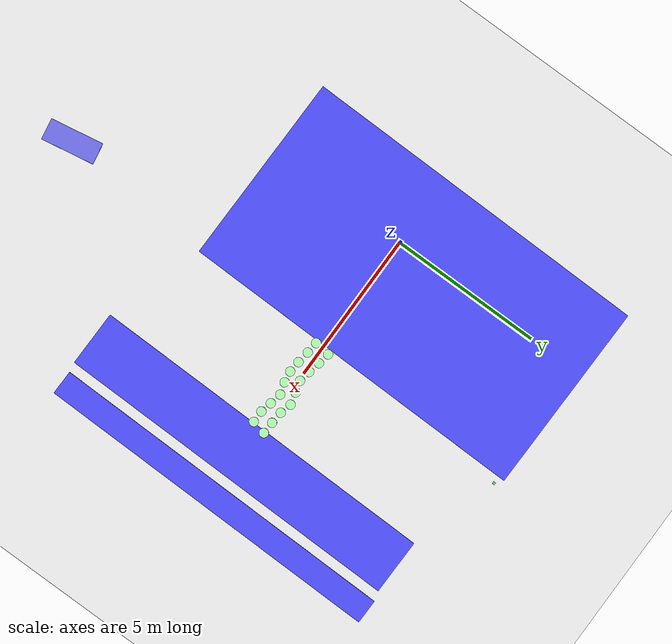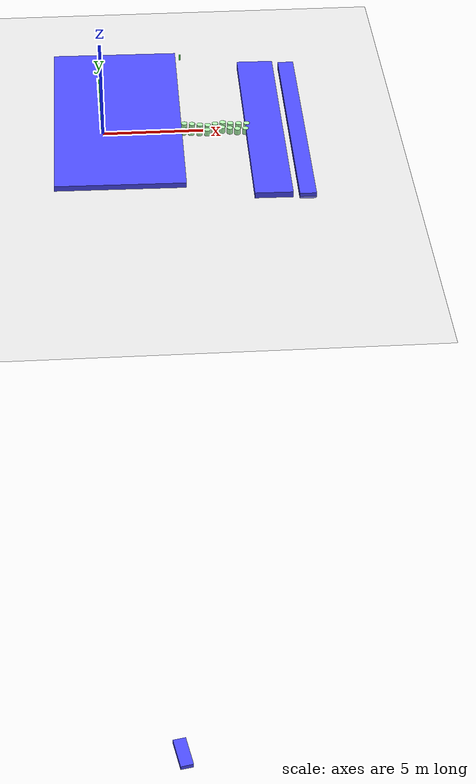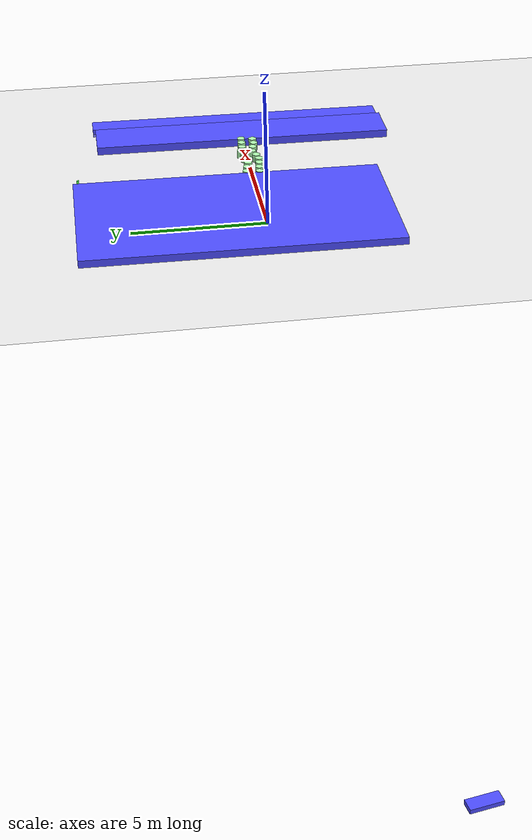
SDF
<sdf version="1.7">
 <world name="default">
  <light name="sun" type="directional">
   <pose>0 0 10 0 -0 0</pose>
   <diffuse>0.8 0.8 0.8 1</diffuse>
   <specular>0.2 0.2 0.2 1</specular>
   <attenuation>
    <range>1000</range>
    <constant>0.9</constant>
    <linear>0.01</linear>
    <quadratic>0.001</quadratic>
   </attenuation>
   <direction>-0.5 0.1 -0.9</direction>
   <spot><inner_angle>0</inner_angle><outer_angle>0</outer_angle><falloff>0</falloff></spot>
  </light>
  <model name="ground_plane">
   <static>1</static>
   <link name="link">
    <collision name="collision">
     <geometry><plane><normal>0 0 1</normal><size>100 100</size></plane></geometry>
     <surface><friction><ode><mu>100</mu><mu2>50</mu2></ode></friction></surface>
    </collision>
    <visual name="visual">
     <cast_shadows>0</cast_shadows>
     <geometry><plane><normal>0 0 1</normal><size>100 100</size></plane></geometry>
     <material>
      <script><uri>file://media/materials/scripts/gazebo.material</uri><name>Gazebo/Grey</name></script>
     </material>
    </visual>
   </link>
  </model>
  <gravity>0 0 -9.8</gravity>
  <magnetic_field>6e-06 2.3e-05 -4.2e-05</magnetic_field>
  <atmosphere type="adiabatic"/>
  <physics type="ode">
   <max_step_size>0.001</max_step_size>
   <real_time_factor>1</real_time_factor>
   <real_time_update_rate>1000</real_time_update_rate>
  </physics>
  <scene><ambient>0.4 0.4 0.4 1</ambient><background>0.7 0.7 0.7 1</background><shadows>1</shadows></scene>
  <spherical_coordinates>
   <surface_model>EARTH_WGS84</surface_model>
   <latitude_deg>0</latitude_deg>
   <longitude_deg>0</longitude_deg>
   <elevation>0</elevation>
   <heading_deg>0</heading_deg>
  </spherical_coordinates>
  <model name="ban_200_80_30_clone_clone">
   <link name="link">
    <inertial>
     <mass>1</mass>
     <inertia>
      <ixx>0.166667</ixx>
      <ixy>0</ixy>
      <ixz>0</ixz>
      <iyy>0.166667</iyy>
      <iyz>0</iyz>
      <izz>0.166667</izz>
     </inertia>
    </inertial>
    <visual name="visual">
     <geometry><box><size>2 0.8 0.3</size></box></geometry>
     <material>
      <script><name>Gazebo/Grey</name><uri>file://media/materials/scripts/gazebo.material</uri></script>
      <shader type="pixel"><normal_map>__default__</normal_map></shader>
      <ambient>0.3 0.3 1 1</ambient>
      <diffuse>0.7 0.7 0.7 1</diffuse>
      <specular>0.01 0.01 0.01 1</specular>
      <emissive>0 0 0 1</emissive>
     </material>
    </visual>
    <collision name="collision">
     <geometry><box><size>2 0.8 0.3</size></box></geometry>
     <surface>
      <friction>
       <ode><mu>1</mu><mu2>1</mu2><fdir1>0 0 0</fdir1><slip1>0</slip1><slip2>0</slip2></ode>
       <torsional>
        <coefficient>1</coefficient>
        <patch_radius>0</patch_radius>
        <surface_radius>0</surface_radius>
        <use_patch_radius>1</use_patch_radius>
        <ode><slip>0</slip></ode>
       </torsional>
      </friction>
      <bounce><restitution_coefficient>0</restitution_coefficient><threshold>1e+06</threshold></bounce>
      <contact>
       <collide_without_contact>0</collide_without_contact>
       <collide_without_contact_bitmask>1</collide_without_contact_bitmask>
       <collide_bitmask>1</collide_bitmask>
       <ode>
        <soft_cfm>0</soft_cfm>
        <soft_erp>0.2</soft_erp>
        <kp>1e+13</kp>
        <kd>1</kd>
        <max_vel>0.01</max_vel>
        <min_depth>0</min_depth>
       </ode>
       <bullet>
        <split_impulse>1</split_impulse>
        <split_impulse_penetration_threshold>-0.01</split_impulse_penetration_threshold>
        <soft_cfm>0</soft_cfm>
        <soft_erp>0.2</soft_erp>
        <kp>1e+13</kp>
        <kd>1</kd>
       </bullet>
      </contact>
     </surface>
    </collision>
   </link>
   <static>1</static>
   <pose>3.32802 -11.2985 -36.3188 0 0 -1.39548</pose>
  </model>
  <model name="ban_400_80_30_clone">
   <link name="link">
    <inertial>
     <mass>1</mass>
     <inertia>
      <ixx>0.166667</ixx>
      <ixy>0</ixy>
      <ixz>0</ixz>
      <iyy>0.166667</iyy>
      <iyz>0</iyz>
      <izz>0.166667</izz>
     </inertia>
    </inertial>
    <visual name="visual">
     <geometry><box><size>11.7457 0.8 0.3</size></box></geometry>
     <material>
      <script><name>Gazebo/Grey</name><uri>file://media/materials/scripts/gazebo.material</uri></script>
      <shader type="pixel"><normal_map>__default__</normal_map></shader>
      <ambient>0.3 0.3 1 1</ambient>
      <diffuse>0.7 0.7 0.7 1</diffuse>
      <specular>0.01 0.01 0.01 1</specular>
      <emissive>0 0 0 1</emissive>
     </material>
    </visual>
    <collision name="collision">
     <geometry><box><size>11.7457 0.8 0.3</size></box></geometry>
     <surface>
      <friction>
       <ode><mu>1</mu><mu2>1</mu2><fdir1>0 0 0</fdir1><slip1>0</slip1><slip2>0</slip2></ode>
       <torsional>
        <coefficient>1</coefficient>
        <patch_radius>0</patch_radius>
        <surface_radius>0</surface_radius>
        <use_patch_radius>1</use_patch_radius>
        <ode><slip>0</slip></ode>
       </torsional>
      </friction>
      <bounce><restitution_coefficient>0</restitution_coefficient><threshold>1e+06</threshold></bounce>
      <contact>
       <collide_without_contact>0</collide_without_contact>
       <collide_without_contact_bitmask>1</collide_without_contact_bitmask>
       <collide_bitmask>1</collide_bitmask>
       <ode>
        <soft_cfm>0</soft_cfm>
        <soft_erp>0.2</soft_erp>
        <kp>1e+13</kp>
        <kd>1</kd>
        <max_vel>0.01</max_vel>
        <min_depth>0</min_depth>
       </ode>
       <bullet>
        <split_impulse>1</split_impulse>
        <split_impulse_penetration_threshold>-0.01</split_impulse_penetration_threshold>
        <soft_cfm>0</soft_cfm>
        <soft_erp>0.2</soft_erp>
        <kp>1e+13</kp>
        <kd>1</kd>
       </bullet>
      </contact>
     </surface>
    </collision>
   </link>
   <static>1</static>
   <pose>9.68721 0.016567 0 0 -0 1.55763</pose>
  </model>
  <model name="mhz_8_30_clone">
   <link name="link">
    <inertial>
     <mass>1</mass>
     <inertia>
      <ixx>0.166667</ixx>
      <ixy>0</ixy>
      <ixz>0</ixz>
      <iyy>0.166667</iyy>
      <iyz>0</iyz>
      <izz>0.166667</izz>
     </inertia>
    </inertial>
    <visual name="visual">
     <geometry><box><size>0.08 0.08 0.3</size></box></geometry>
     <material>
      <script><name>Gazebo/Grey</name><uri>file://media/materials/scripts/gazebo.material</uri></script>
      <shader type="pixel"><normal_map>__default__</normal_map></shader>
      <ambient>0.3 1 0.3 1</ambient>
      <diffuse>0.7 0.7 0.7 1</diffuse>
      <specular>0.01 0.01 0.01 1</specular>
      <emissive>0 0 0 1</emissive>
     </material>
    </visual>
    <collision name="collision">
     <geometry><box><size>0.08 0.08 0.3</size></box></geometry>
     <surface>
      <friction>
       <ode><mu>1</mu><mu2>1</mu2><fdir1>0 0 0</fdir1><slip1>0</slip1><slip2>0</slip2></ode>
       <torsional>
        <coefficient>1</coefficient>
        <patch_radius>0</patch_radius>
        <surface_radius>0</surface_radius>
        <use_patch_radius>1</use_patch_radius>
        <ode><slip>0</slip></ode>
       </torsional>
      </friction>
      <bounce><restitution_coefficient>0</restitution_coefficient><threshold>1e+06</threshold></bounce>
      <contact>
       <collide_without_contact>0</collide_without_contact>
       <collide_without_contact_bitmask>1</collide_without_contact_bitmask>
       <collide_bitmask>1</collide_bitmask>
       <ode>
        <soft_cfm>0</soft_cfm>
        <soft_erp>0.2</soft_erp>
        <kp>1e+13</kp>
        <kd>1</kd>
        <max_vel>0.01</max_vel>
        <min_depth>0</min_depth>
       </ode>
       <bullet>
        <split_impulse>1</split_impulse>
        <split_impulse_penetration_threshold>-0.01</split_impulse_penetration_threshold>
        <soft_cfm>0</soft_cfm>
        <soft_erp>0.2</soft_erp>
        <kp>1e+13</kp>
        <kd>1</kd>
       </bullet>
      </contact>
     </surface>
    </collision>
   </link>
   <static>1</static>
   <pose>4.25594 6.71166 0.134436 0 -0 0</pose>
  </model>
  <model name="ban_400_80_30_clone_clone_clone">
   <link name="link">
    <inertial>
     <mass>1</mass>
     <inertia>
      <ixx>0.166667</ixx>
      <ixy>0</ixy>
      <ixz>0</ixz>
      <iyy>0.166667</iyy>
      <iyz>0</iyz>
      <izz>0.166667</izz>
     </inertia>
    </inertial>
    <visual name="visual">
     <geometry><box><size>11.703 1.83242 0.3</size></box></geometry>
     <material>
      <script><name>Gazebo/Grey</name><uri>file://media/materials/scripts/gazebo.material</uri></script>
      <shader type="pixel"><normal_map>__default__</normal_map></shader>
      <ambient>0.3 0.3 1 1</ambient>
      <diffuse>0.7 0.7 0.7 1</diffuse>
      <specular>0.01 0.01 0.01 1</specular>
      <emissive>0 0 0 1</emissive>
     </material>
    </visual>
    <collision name="collision">
     <geometry><box><size>11.703 1.83242 0.3</size></box></geometry>
     <surface>
      <friction>
       <ode><mu>1</mu><mu2>1</mu2><fdir1>0 0 0</fdir1><slip1>0</slip1><slip2>0</slip2></ode>
       <torsional>
        <coefficient>1</coefficient>
        <patch_radius>0</patch_radius>
        <surface_radius>0</surface_radius>
        <use_patch_radius>1</use_patch_radius>
        <ode><slip>0</slip></ode>
       </torsional>
      </friction>
      <bounce><restitution_coefficient>0</restitution_coefficient><threshold>1e+06</threshold></bounce>
      <contact>
       <collide_without_contact>0</collide_without_contact>
       <collide_without_contact_bitmask>1</collide_without_contact_bitmask>
       <collide_bitmask>1</collide_bitmask>
       <ode>
        <soft_cfm>0</soft_cfm>
        <soft_erp>0.2</soft_erp>
        <kp>1e+13</kp>
        <kd>1</kd>
        <max_vel>0.01</max_vel>
        <min_depth>0</min_depth>
       </ode>
       <bullet>
        <split_impulse>1</split_impulse>
        <split_impulse_penetration_threshold>-0.01</split_impulse_penetration_threshold>
        <soft_cfm>0</soft_cfm>
        <soft_erp>0.2</soft_erp>
        <kp>1e+13</kp>
        <kd>1</kd>
       </bullet>
      </contact>
     </surface>
    </collision>
   </link>
   <static>1</static>
   <pose>8.04186 -0.043434 0.139007 0 -0 1.55763</pose>
  </model>
  <model name="ban_400_80_30_clone_clone_0_clone_clone">
   <link name="link">
    <inertial>
     <mass>1</mass>
     <inertia>
      <ixx>0.166667</ixx>
      <ixy>0</ixy>
      <ixz>0</ixz>
      <iyy>0.166667</iyy>
      <iyz>0</iyz>
      <izz>0.166667</izz>
     </inertia>
    </inertial>
    <visual name="visual">
     <geometry><box><size>11.7457 6.34681 0.274752</size></box></geometry>
     <material>
      <script><name>Gazebo/Grey</name><uri>file://media/materials/scripts/gazebo.material</uri></script>
      <shader type="pixel"><normal_map>__default__</normal_map></shader>
      <ambient>0.3 0.3 1 1</ambient>
      <diffuse>0.7 0.7 0.7 1</diffuse>
      <specular>0.01 0.01 0.01 1</specular>
      <emissive>0 0 0 1</emissive>
     </material>
    </visual>
    <collision name="collision">
     <geometry><box><size>11.7457 6.34681 0.274752</size></box></geometry>
     <surface>
      <friction>
       <ode><mu>1</mu><mu2>1</mu2><fdir1>0 0 0</fdir1><slip1>0</slip1><slip2>0</slip2></ode>
       <torsional>
        <coefficient>1</coefficient>
        <patch_radius>0</patch_radius>
        <surface_radius>0</surface_radius>
        <use_patch_radius>1</use_patch_radius>
        <ode><slip>0</slip></ode>
       </torsional>
      </friction>
      <bounce><restitution_coefficient>0</restitution_coefficient><threshold>1e+06</threshold></bounce>
      <contact>
       <collide_without_contact>0</collide_without_contact>
       <collide_without_contact_bitmask>1</collide_without_contact_bitmask>
       <collide_bitmask>1</collide_bitmask>
       <ode>
        <soft_cfm>0</soft_cfm>
        <soft_erp>0.2</soft_erp>
        <kp>1e+13</kp>
        <kd>1</kd>
        <max_vel>0.01</max_vel>
        <min_depth>0</min_depth>
       </ode>
       <bullet>
        <split_impulse>1</split_impulse>
        <split_impulse_penetration_threshold>-0.01</split_impulse_penetration_threshold>
        <soft_cfm>0</soft_cfm>
        <soft_erp>0.2</soft_erp>
        <kp>1e+13</kp>
        <kd>1</kd>
       </bullet>
      </contact>
     </surface>
    </collision>
   </link>
   <static>1</static>
   <pose>0.760648 1.08367 0.138376 0 -0 1.55763</pose>
  </model>
  <model name="mhz_y_25_30_clone_13_clone_clone_9_clone_0_clone_clone">
   <link name="link">
    <inertial>
     <mass>1</mass>
     <inertia><ixx>0.145833</ixx><ixy>0</ixy><ixz>0</ixz><iyy>0.145833</iyy><iyz>0</iyz><izz>0.125</izz></inertia>
    </inertial>
    <visual name="visual">
     <geometry><cylinder><radius>0.15149</radius><length>0.3</length></cylinder></geometry>
     <material>
      <script><name>Gazebo/Grey</name><uri>file://media/materials/scripts/gazebo.material</uri></script>
      <shader type="pixel"><normal_map>__default__</normal_map></shader>
      <ambient>0 1 0 0</ambient>
      <diffuse>0.7 1 0.7 1</diffuse>
      <specular>0.01 0.01 0.01 1</specular>
      <emissive>0 0 0 1</emissive>
     </material>
    </visual>
    <collision name="collision">
     <geometry><cylinder><radius>0.15149</radius><length>0.3</length></cylinder></geometry>
     <surface>
      <friction>
       <ode><mu>1</mu><mu2>1</mu2><fdir1>0 0 0</fdir1><slip1>0</slip1><slip2>0</slip2></ode>
       <torsional>
        <coefficient>1</coefficient>
        <patch_radius>0</patch_radius>
        <surface_radius>0</surface_radius>
        <use_patch_radius>1</use_patch_radius>
        <ode><slip>0</slip></ode>
       </torsional>
      </friction>
      <bounce><restitution_coefficient>0</restitution_coefficient><threshold>1e+06</threshold></bounce>
      <contact>
       <collide_without_contact>0</collide_without_contact>
       <collide_without_contact_bitmask>1</collide_without_contact_bitmask>
       <collide_bitmask>1</collide_bitmask>
       <ode>
        <soft_cfm>0</soft_cfm>
        <soft_erp>0.2</soft_erp>
        <kp>1e+13</kp>
        <kd>1</kd>
        <max_vel>0.01</max_vel>
        <min_depth>0</min_depth>
       </ode>
       <bullet>
        <split_impulse>1</split_impulse>
        <split_impulse_penetration_threshold>-0.01</split_impulse_penetration_threshold>
        <soft_cfm>0</soft_cfm>
        <soft_erp>0.2</soft_erp>
        <kp>1e+13</kp>
        <kd>1</kd>
       </bullet>
      </contact>
     </surface>
    </collision>
   </link>
   <static>1</static>
   <pose>4.06973 0.24708 0.14679 0 -0 0</pose>
  </model>
  <model name="mhz_y_25_30_clone_13_clone_clone_9_clone_0_clone_clone_0_clone_clone">
   <link name="link">
    <inertial>
     <mass>1</mass>
     <inertia><ixx>0.145833</ixx><ixy>0</ixy><ixz>0</ixz><iyy>0.145833</iyy><iyz>0</iyz><izz>0.125</izz></inertia>
    </inertial>
    <visual name="visual">
     <geometry><cylinder><radius>0.156911</radius><length>0.3</length></cylinder></geometry>
     <material>
      <script><name>Gazebo/Grey</name><uri>file://media/materials/scripts/gazebo.material</uri></script>
      <shader type="pixel"><normal_map>__default__</normal_map></shader>
      <ambient>0 1 0 0</ambient>
      <diffuse>0.7 1 0.7 1</diffuse>
      <specular>0.01 0.01 0.01 1</specular>
      <emissive>0 0 0 1</emissive>
     </material>
    </visual>
    <collision name="collision">
     <geometry><cylinder><radius>0.156911</radius><length>0.3</length></cylinder></geometry>
     <surface>
      <friction>
       <ode><mu>1</mu><mu2>1</mu2><fdir1>0 0 0</fdir1><slip1>0</slip1><slip2>0</slip2></ode>
       <torsional>
        <coefficient>1</coefficient>
        <patch_radius>0</patch_radius>
        <surface_radius>0</surface_radius>
        <use_patch_radius>1</use_patch_radius>
        <ode><slip>0</slip></ode>
       </torsional>
      </friction>
      <bounce><restitution_coefficient>0</restitution_coefficient><threshold>1e+06</threshold></bounce>
      <contact>
       <collide_without_contact>0</collide_without_contact>
       <collide_without_contact_bitmask>1</collide_without_contact_bitmask>
       <collide_bitmask>1</collide_bitmask>
       <ode>
        <soft_cfm>0</soft_cfm>
        <soft_erp>0.2</soft_erp>
        <kp>1e+13</kp>
        <kd>1</kd>
        <max_vel>0.01</max_vel>
        <min_depth>0</min_depth>
       </ode>
       <bullet>
        <split_impulse>1</split_impulse>
        <split_impulse_penetration_threshold>-0.01</split_impulse_penetration_threshold>
        <soft_cfm>0</soft_cfm>
        <soft_erp>0.2</soft_erp>
        <kp>1e+13</kp>
        <kd>1</kd>
       </bullet>
      </contact>
     </surface>
    </collision>
   </link>
   <static>1</static>
   <pose>4.8464 0.093522 0.14679 0 -0 0</pose>
  </model>
  <model name="mhz_y_25_30_clone_13_clone_clone_9_clone_0_clone_clone_clone">
   <link name="link">
    <inertial>
     <mass>1</mass>
     <inertia><ixx>0.145833</ixx><ixy>0</ixy><ixz>0</ixz><iyy>0.145833</iyy><iyz>0</iyz><izz>0.125</izz></inertia>
    </inertial>
    <visual name="visual">
     <geometry><cylinder><radius>0.15149</radius><length>0.3</length></cylinder></geometry>
     <material>
      <script><name>Gazebo/Grey</name><uri>file://media/materials/scripts/gazebo.material</uri></script>
      <shader type="pixel"><normal_map>__default__</normal_map></shader>
      <ambient>0 1 0 0</ambient>
      <diffuse>0.7 1 0.7 1</diffuse>
      <specular>0.01 0.01 0.01 1</specular>
      <emissive>0 0 0 1</emissive>
     </material>
    </visual>
    <collision name="collision">
     <geometry><cylinder><radius>0.15149</radius><length>0.3</length></cylinder></geometry>
     <surface>
      <friction>
       <ode><mu>1</mu><mu2>1</mu2><fdir1>0 0 0</fdir1><slip1>0</slip1><slip2>0</slip2></ode>
       <torsional>
        <coefficient>1</coefficient>
        <patch_radius>0</patch_radius>
        <surface_radius>0</surface_radius>
        <use_patch_radius>1</use_patch_radius>
        <ode><slip>0</slip></ode>
       </torsional>
      </friction>
      <bounce><restitution_coefficient>0</restitution_coefficient><threshold>1e+06</threshold></bounce>
      <contact>
       <collide_without_contact>0</collide_without_contact>
       <collide_without_contact_bitmask>1</collide_without_contact_bitmask>
       <collide_bitmask>1</collide_bitmask>
       <ode>
        <soft_cfm>0</soft_cfm>
        <soft_erp>0.2</soft_erp>
        <kp>1e+13</kp>
        <kd>1</kd>
        <max_vel>0.01</max_vel>
        <min_depth>0</min_depth>
       </ode>
       <bullet>
        <split_impulse>1</split_impulse>
        <split_impulse_penetration_threshold>-0.01</split_impulse_penetration_threshold>
        <soft_cfm>0</soft_cfm>
        <soft_erp>0.2</soft_erp>
        <kp>1e+13</kp>
        <kd>1</kd>
       </bullet>
      </contact>
     </surface>
    </collision>
   </link>
   <static>1</static>
   <pose>4.00474 -0.254017 0.14679 0 -0 0</pose>
  </model>
  <model name="mhz_y_25_30_clone_13_clone_clone_9_clone_0_clone_clone_clone_clone">
   <link name="link">
    <inertial>
     <mass>1</mass>
     <inertia><ixx>0.145833</ixx><ixy>0</ixy><ixz>0</ixz><iyy>0.145833</iyy><iyz>0</iyz><izz>0.125</izz></inertia>
    </inertial>
    <visual name="visual">
     <geometry><cylinder><radius>0.15149</radius><length>0.3</length></cylinder></geometry>
     <material>
      <script><name>Gazebo/Grey</name><uri>file://media/materials/scripts/gazebo.material</uri></script>
      <shader type="pixel"><normal_map>__default__</normal_map></shader>
      <ambient>0 1 0 0</ambient>
      <diffuse>0.7 1 0.7 1</diffuse>
      <specular>0.01 0.01 0.01 1</specular>
      <emissive>0 0 0 1</emissive>
     </material>
    </visual>
    <collision name="collision">
     <geometry><cylinder><radius>0.15149</radius><length>0.3</length></cylinder></geometry>
     <surface>
      <friction>
       <ode><mu>1</mu><mu2>1</mu2><fdir1>0 0 0</fdir1><slip1>0</slip1><slip2>0</slip2></ode>
       <torsional>
        <coefficient>1</coefficient>
        <patch_radius>0</patch_radius>
        <surface_radius>0</surface_radius>
        <use_patch_radius>1</use_patch_radius>
        <ode><slip>0</slip></ode>
       </torsional>
      </friction>
      <bounce><restitution_coefficient>0</restitution_coefficient><threshold>1e+06</threshold></bounce>
      <contact>
       <collide_without_contact>0</collide_without_contact>
       <collide_without_contact_bitmask>1</collide_without_contact_bitmask>
       <collide_bitmask>1</collide_bitmask>
       <ode>
        <soft_cfm>0</soft_cfm>
        <soft_erp>0.2</soft_erp>
        <kp>1e+13</kp>
        <kd>1</kd>
        <max_vel>0.01</max_vel>
        <min_depth>0</min_depth>
       </ode>
       <bullet>
        <split_impulse>1</split_impulse>
        <split_impulse_penetration_threshold>-0.01</split_impulse_penetration_threshold>
        <soft_cfm>0</soft_cfm>
        <soft_erp>0.2</soft_erp>
        <kp>1e+13</kp>
        <kd>1</kd>
       </bullet>
      </contact>
     </surface>
    </collision>
   </link>
   <static>1</static>
   <pose>4.45485 0.181742 0.14679 0 -0 0</pose>
  </model>
  <model name="mhz_y_25_30_clone_13_clone_clone_9_clone_0_clone_clone_clone_0">
   <link name="link">
    <inertial>
     <mass>1</mass>
     <inertia><ixx>0.145833</ixx><ixy>0</ixy><ixz>0</ixz><iyy>0.145833</iyy><iyz>0</iyz><izz>0.125</izz></inertia>
    </inertial>
    <visual name="visual">
     <geometry><cylinder><radius>0.15149</radius><length>0.3</length></cylinder></geometry>
     <material>
      <script><name>Gazebo/Grey</name><uri>file://media/materials/scripts/gazebo.material</uri></script>
      <shader type="pixel"><normal_map>__default__</normal_map></shader>
      <ambient>0 1 0 0</ambient>
      <diffuse>0.7 1 0.7 1</diffuse>
      <specular>0.01 0.01 0.01 1</specular>
      <emissive>0 0 0 1</emissive>
     </material>
    </visual>
    <collision name="collision">
     <geometry><cylinder><radius>0.15149</radius><length>0.3</length></cylinder></geometry>
     <surface>
      <friction>
       <ode><mu>1</mu><mu2>1</mu2><fdir1>0 0 0</fdir1><slip1>0</slip1><slip2>0</slip2></ode>
       <torsional>
        <coefficient>1</coefficient>
        <patch_radius>0</patch_radius>
        <surface_radius>0</surface_radius>
        <use_patch_radius>1</use_patch_radius>
        <ode><slip>0</slip></ode>
       </torsional>
      </friction>
      <bounce><restitution_coefficient>0</restitution_coefficient><threshold>1e+06</threshold></bounce>
      <contact>
       <collide_without_contact>0</collide_without_contact>
       <collide_without_contact_bitmask>1</collide_without_contact_bitmask>
       <collide_bitmask>1</collide_bitmask>
       <ode>
        <soft_cfm>0</soft_cfm>
        <soft_erp>0.2</soft_erp>
        <kp>1e+13</kp>
        <kd>1</kd>
        <max_vel>0.01</max_vel>
        <min_depth>0</min_depth>
       </ode>
       <bullet>
        <split_impulse>1</split_impulse>
        <split_impulse_penetration_threshold>-0.01</split_impulse_penetration_threshold>
        <soft_cfm>0</soft_cfm>
        <soft_erp>0.2</soft_erp>
        <kp>1e+13</kp>
        <kd>1</kd>
       </bullet>
      </contact>
     </surface>
    </collision>
   </link>
   <static>1</static>
   <pose>4.39252 -0.291583 0.14679 0 -0 0</pose>
  </model>
  <model name="mhz_y_25_30_clone_13_clone_clone_9_clone_0_clone_clone_clone_1">
   <link name="link">
    <inertial>
     <mass>1</mass>
     <inertia><ixx>0.145833</ixx><ixy>0</ixy><ixz>0</ixz><iyy>0.145833</iyy><iyz>0</iyz><izz>0.125</izz></inertia>
    </inertial>
    <visual name="visual">
     <geometry><cylinder><radius>0.15149</radius><length>0.3</length></cylinder></geometry>
     <material>
      <script><name>Gazebo/Grey</name><uri>file://media/materials/scripts/gazebo.material</uri></script>
      <shader type="pixel"><normal_map>__default__</normal_map></shader>
      <ambient>0 1 0 0</ambient>
      <diffuse>0.7 1 0.7 1</diffuse>
      <specular>0.01 0.01 0.01 1</specular>
      <emissive>0 0 0 1</emissive>
     </material>
    </visual>
    <collision name="collision">
     <geometry><cylinder><radius>0.15149</radius><length>0.3</length></cylinder></geometry>
     <surface>
      <friction>
       <ode><mu>1</mu><mu2>1</mu2><fdir1>0 0 0</fdir1><slip1>0</slip1><slip2>0</slip2></ode>
       <torsional>
        <coefficient>1</coefficient>
        <patch_radius>0</patch_radius>
        <surface_radius>0</surface_radius>
        <use_patch_radius>1</use_patch_radius>
        <ode><slip>0</slip></ode>
       </torsional>
      </friction>
      <bounce><restitution_coefficient>0</restitution_coefficient><threshold>1e+06</threshold></bounce>
      <contact>
       <collide_without_contact>0</collide_without_contact>
       <collide_without_contact_bitmask>1</collide_without_contact_bitmask>
       <collide_bitmask>1</collide_bitmask>
       <ode>
        <soft_cfm>0</soft_cfm>
        <soft_erp>0.2</soft_erp>
        <kp>1e+13</kp>
        <kd>1</kd>
        <max_vel>0.01</max_vel>
        <min_depth>0</min_depth>
       </ode>
       <bullet>
        <split_impulse>1</split_impulse>
        <split_impulse_penetration_threshold>-0.01</split_impulse_penetration_threshold>
        <soft_cfm>0</soft_cfm>
        <soft_erp>0.2</soft_erp>
        <kp>1e+13</kp>
        <kd>1</kd>
       </bullet>
      </contact>
     </surface>
    </collision>
   </link>
   <static>1</static>
   <pose>4.79937 -0.34612 0.14679 0 -0 0</pose>
  </model>
  <model name="mhz_y_25_30_clone_13_clone_clone_9_clone_0_clone_clone_clone_2">
   <link name="link">
    <inertial>
     <mass>1</mass>
     <inertia><ixx>0.145833</ixx><ixy>0</ixy><ixz>0</ixz><iyy>0.145833</iyy><iyz>0</iyz><izz>0.125</izz></inertia>
    </inertial>
    <visual name="visual">
     <geometry><cylinder><radius>0.15149</radius><length>0.3</length></cylinder></geometry>
     <material>
      <script><name>Gazebo/Grey</name><uri>file://media/materials/scripts/gazebo.material</uri></script>
      <shader type="pixel"><normal_map>__default__</normal_map></shader>
      <ambient>0 1 0 0</ambient>
      <diffuse>0.7 1 0.7 1</diffuse>
      <specular>0.01 0.01 0.01 1</specular>
      <emissive>0 0 0 1</emissive>
     </material>
    </visual>
    <collision name="collision">
     <geometry><cylinder><radius>0.15149</radius><length>0.3</length></cylinder></geometry>
     <surface>
      <friction>
       <ode><mu>1</mu><mu2>1</mu2><fdir1>0 0 0</fdir1><slip1>0</slip1><slip2>0</slip2></ode>
       <torsional>
        <coefficient>1</coefficient>
        <patch_radius>0</patch_radius>
        <surface_radius>0</surface_radius>
        <use_patch_radius>1</use_patch_radius>
        <ode><slip>0</slip></ode>
       </torsional>
      </friction>
      <bounce><restitution_coefficient>0</restitution_coefficient><threshold>1e+06</threshold></bounce>
      <contact>
       <collide_without_contact>0</collide_without_contact>
       <collide_without_contact_bitmask>1</collide_without_contact_bitmask>
       <collide_bitmask>1</collide_bitmask>
       <ode>
        <soft_cfm>0</soft_cfm>
        <soft_erp>0.2</soft_erp>
        <kp>1e+13</kp>
        <kd>1</kd>
        <max_vel>0.01</max_vel>
        <min_depth>0</min_depth>
       </ode>
       <bullet>
        <split_impulse>1</split_impulse>
        <split_impulse_penetration_threshold>-0.01</split_impulse_penetration_threshold>
        <soft_cfm>0</soft_cfm>
        <soft_erp>0.2</soft_erp>
        <kp>1e+13</kp>
        <kd>1</kd>
       </bullet>
      </contact>
     </surface>
    </collision>
   </link>
   <static>1</static>
   <pose>5.1826 -0.381923 0.14679 0 -0 0</pose>
  </model>
  <model name="mhz_y_25_30_clone_13_clone_clone_9_clone_0_clone_clone_clone_2_clone">
   <link name="link">
    <inertial>
     <mass>1</mass>
     <inertia><ixx>0.145833</ixx><ixy>0</ixy><ixz>0</ixz><iyy>0.145833</iyy><iyz>0</iyz><izz>0.125</izz></inertia>
    </inertial>
    <visual name="visual">
     <geometry><cylinder><radius>0.15149</radius><length>0.3</length></cylinder></geometry>
     <material>
      <script><name>Gazebo/Grey</name><uri>file://media/materials/scripts/gazebo.material</uri></script>
      <shader type="pixel"><normal_map>__default__</normal_map></shader>
      <ambient>0 1 0 0</ambient>
      <diffuse>0.7 1 0.7 1</diffuse>
      <specular>0.01 0.01 0.01 1</specular>
      <emissive>0 0 0 1</emissive>
     </material>
    </visual>
    <collision name="collision">
     <geometry><cylinder><radius>0.15149</radius><length>0.3</length></cylinder></geometry>
     <surface>
      <friction>
       <ode><mu>1</mu><mu2>1</mu2><fdir1>0 0 0</fdir1><slip1>0</slip1><slip2>0</slip2></ode>
       <torsional>
        <coefficient>1</coefficient>
        <patch_radius>0</patch_radius>
        <surface_radius>0</surface_radius>
        <use_patch_radius>1</use_patch_radius>
        <ode><slip>0</slip></ode>
       </torsional>
      </friction>
      <bounce><restitution_coefficient>0</restitution_coefficient><threshold>1e+06</threshold></bounce>
      <contact>
       <collide_without_contact>0</collide_without_contact>
       <collide_without_contact_bitmask>1</collide_without_contact_bitmask>
       <collide_bitmask>1</collide_bitmask>
       <ode>
        <soft_cfm>0</soft_cfm>
        <soft_erp>0.2</soft_erp>
        <kp>1e+13</kp>
        <kd>1</kd>
        <max_vel>0.01</max_vel>
        <min_depth>0</min_depth>
       </ode>
       <bullet>
        <split_impulse>1</split_impulse>
        <split_impulse_penetration_threshold>-0.01</split_impulse_penetration_threshold>
        <soft_cfm>0</soft_cfm>
        <soft_erp>0.2</soft_erp>
        <kp>1e+13</kp>
        <kd>1</kd>
       </bullet>
      </contact>
     </surface>
    </collision>
   </link>
   <static>1</static>
   <pose>5.23444 0.033162 0.14679 0 -0 0</pose>
  </model>
  <model name="mhz_y_25_30_clone_13_clone_clone_9_clone_0_clone_clone_clone_2_clone_0">
   <link name="link">
    <inertial>
     <mass>1</mass>
     <inertia><ixx>0.145833</ixx><ixy>0</ixy><ixz>0</ixz><iyy>0.145833</iyy><iyz>0</iyz><izz>0.125</izz></inertia>
    </inertial>
    <visual name="visual">
     <geometry><cylinder><radius>0.15149</radius><length>0.3</length></cylinder></geometry>
     <material>
      <script><name>Gazebo/Grey</name><uri>file://media/materials/scripts/gazebo.material</uri></script>
      <shader type="pixel"><normal_map>__default__</normal_map></shader>
      <ambient>0 1 0 0</ambient>
      <diffuse>0.7 1 0.7 1</diffuse>
      <specular>0.01 0.01 0.01 1</specular>
      <emissive>0 0 0 1</emissive>
     </material>
    </visual>
    <collision name="collision">
     <geometry><cylinder><radius>0.15149</radius><length>0.3</length></cylinder></geometry>
     <surface>
      <friction>
       <ode><mu>1</mu><mu2>1</mu2><fdir1>0 0 0</fdir1><slip1>0</slip1><slip2>0</slip2></ode>
       <torsional>
        <coefficient>1</coefficient>
        <patch_radius>0</patch_radius>
        <surface_radius>0</surface_radius>
        <use_patch_radius>1</use_patch_radius>
        <ode><slip>0</slip></ode>
       </torsional>
      </friction>
      <bounce><restitution_coefficient>0</restitution_coefficient><threshold>1e+06</threshold></bounce>
      <contact>
       <collide_without_contact>0</collide_without_contact>
       <collide_without_contact_bitmask>1</collide_without_contact_bitmask>
       <collide_bitmask>1</collide_bitmask>
       <ode>
        <soft_cfm>0</soft_cfm>
        <soft_erp>0.2</soft_erp>
        <kp>1e+13</kp>
        <kd>1</kd>
        <max_vel>0.01</max_vel>
        <min_depth>0</min_depth>
       </ode>
       <bullet>
        <split_impulse>1</split_impulse>
        <split_impulse_penetration_threshold>-0.01</split_impulse_penetration_threshold>
        <soft_cfm>0</soft_cfm>
        <soft_erp>0.2</soft_erp>
        <kp>1e+13</kp>
        <kd>1</kd>
       </bullet>
      </contact>
     </surface>
    </collision>
   </link>
   <static>1</static>
   <pose>5.55189 -0.323477 0.14679 0 -0 0</pose>
  </model>
  <model name="mhz_y_25_30_clone_13_clone_clone_9_clone_0_clone_clone_clone_2_clone_1">
   <link name="link">
    <inertial>
     <mass>1</mass>
     <inertia><ixx>0.145833</ixx><ixy>0</ixy><ixz>0</ixz><iyy>0.145833</iyy><iyz>0</iyz><izz>0.125</izz></inertia>
    </inertial>
    <visual name="visual">
     <geometry><cylinder><radius>0.15149</radius><length>0.3</length></cylinder></geometry>
     <material>
      <script><name>Gazebo/Grey</name><uri>file://media/materials/scripts/gazebo.material</uri></script>
      <shader type="pixel"><normal_map>__default__</normal_map></shader>
      <ambient>0 1 0 0</ambient>
      <diffuse>0.7 1 0.7 1</diffuse>
      <specular>0.01 0.01 0.01 1</specular>
      <emissive>0 0 0 1</emissive>
     </material>
    </visual>
    <collision name="collision">
     <geometry><cylinder><radius>0.15149</radius><length>0.3</length></cylinder></geometry>
     <surface>
      <friction>
       <ode><mu>1</mu><mu2>1</mu2><fdir1>0 0 0</fdir1><slip1>0</slip1><slip2>0</slip2></ode>
       <torsional>
        <coefficient>1</coefficient>
        <patch_radius>0</patch_radius>
        <surface_radius>0</surface_radius>
        <use_patch_radius>1</use_patch_radius>
        <ode><slip>0</slip></ode>
       </torsional>
      </friction>
      <bounce><restitution_coefficient>0</restitution_coefficient><threshold>1e+06</threshold></bounce>
      <contact>
       <collide_without_contact>0</collide_without_contact>
       <collide_without_contact_bitmask>1</collide_without_contact_bitmask>
       <collide_bitmask>1</collide_bitmask>
       <ode>
        <soft_cfm>0</soft_cfm>
        <soft_erp>0.2</soft_erp>
        <kp>1e+13</kp>
        <kd>1</kd>
        <max_vel>0.01</max_vel>
        <min_depth>0</min_depth>
       </ode>
       <bullet>
        <split_impulse>1</split_impulse>
        <split_impulse_penetration_threshold>-0.01</split_impulse_penetration_threshold>
        <soft_cfm>0</soft_cfm>
        <soft_erp>0.2</soft_erp>
        <kp>1e+13</kp>
        <kd>1</kd>
       </bullet>
      </contact>
     </surface>
    </collision>
   </link>
   <static>1</static>
   <pose>5.60478 0.137195 0.14679 0 -0 0</pose>
  </model>
  <model name="mhz_y_25_30_clone_13_clone_clone_9_clone_0_clone_clone_clone_2_clone_0_clone">
   <link name="link">
    <inertial>
     <mass>1</mass>
     <inertia><ixx>0.145833</ixx><ixy>0</ixy><ixz>0</ixz><iyy>0.145833</iyy><iyz>0</iyz><izz>0.125</izz></inertia>
    </inertial>
    <visual name="visual">
     <geometry><cylinder><radius>0.15149</radius><length>0.3</length></cylinder></geometry>
     <material>
      <script><name>Gazebo/Grey</name><uri>file://media/materials/scripts/gazebo.material</uri></script>
      <shader type="pixel"><normal_map>__default__</normal_map></shader>
      <ambient>0 1 0 0</ambient>
      <diffuse>0.7 1 0.7 1</diffuse>
      <specular>0.01 0.01 0.01 1</specular>
      <emissive>0 0 0 1</emissive>
     </material>
    </visual>
    <collision name="collision">
     <geometry><cylinder><radius>0.15149</radius><length>0.3</length></cylinder></geometry>
     <surface>
      <friction>
       <ode><mu>1</mu><mu2>1</mu2><fdir1>0 0 0</fdir1><slip1>0</slip1><slip2>0</slip2></ode>
       <torsional>
        <coefficient>1</coefficient>
        <patch_radius>0</patch_radius>
        <surface_radius>0</surface_radius>
        <use_patch_radius>1</use_patch_radius>
        <ode><slip>0</slip></ode>
       </torsional>
      </friction>
      <bounce><restitution_coefficient>0</restitution_coefficient><threshold>1e+06</threshold></bounce>
      <contact>
       <collide_without_contact>0</collide_without_contact>
       <collide_without_contact_bitmask>1</collide_without_contact_bitmask>
       <collide_bitmask>1</collide_bitmask>
       <ode>
        <soft_cfm>0</soft_cfm>
        <soft_erp>0.2</soft_erp>
        <kp>1e+13</kp>
        <kd>1</kd>
        <max_vel>0.01</max_vel>
        <min_depth>0</min_depth>
       </ode>
       <bullet>
        <split_impulse>1</split_impulse>
        <split_impulse_penetration_threshold>-0.01</split_impulse_penetration_threshold>
        <soft_cfm>0</soft_cfm>
        <soft_erp>0.2</soft_erp>
        <kp>1e+13</kp>
        <kd>1</kd>
       </bullet>
      </contact>
     </surface>
    </collision>
   </link>
   <static>1</static>
   <pose>5.93652 -0.209893 0.14679 0 -0 0</pose>
  </model>
  <model name="mhz_y_25_30_clone_13_clone_clone_9_clone_0_clone_clone_clone_2_clone_0_clone_clone">
   <link name="link">
    <inertial>
     <mass>1</mass>
     <inertia><ixx>0.145833</ixx><ixy>0</ixy><ixz>0</ixz><iyy>0.145833</iyy><iyz>0</iyz><izz>0.125</izz></inertia>
    </inertial>
    <visual name="visual">
     <geometry><cylinder><radius>0.15149</radius><length>0.3</length></cylinder></geometry>
     <material>
      <script><name>Gazebo/Grey</name><uri>file://media/materials/scripts/gazebo.material</uri></script>
      <shader type="pixel"><normal_map>__default__</normal_map></shader>
      <ambient>0 1 0 0</ambient>
      <diffuse>0.7 1 0.7 1</diffuse>
      <specular>0.01 0.01 0.01 1</specular>
      <emissive>0 0 0 1</emissive>
     </material>
    </visual>
    <collision name="collision">
     <geometry><cylinder><radius>0.15149</radius><length>0.3</length></cylinder></geometry>
     <surface>
      <friction>
       <ode><mu>1</mu><mu2>1</mu2><fdir1>0 0 0</fdir1><slip1>0</slip1><slip2>0</slip2></ode>
       <torsional>
        <coefficient>1</coefficient>
        <patch_radius>0</patch_radius>
        <surface_radius>0</surface_radius>
        <use_patch_radius>1</use_patch_radius>
        <ode><slip>0</slip></ode>
       </torsional>
      </friction>
      <bounce><restitution_coefficient>0</restitution_coefficient><threshold>1e+06</threshold></bounce>
      <contact>
       <collide_without_contact>0</collide_without_contact>
       <collide_without_contact_bitmask>1</collide_without_contact_bitmask>
       <collide_bitmask>1</collide_bitmask>
       <ode>
        <soft_cfm>0</soft_cfm>
        <soft_erp>0.2</soft_erp>
        <kp>1e+13</kp>
        <kd>1</kd>
        <max_vel>0.01</max_vel>
        <min_depth>0</min_depth>
       </ode>
       <bullet>
        <split_impulse>1</split_impulse>
        <split_impulse_penetration_threshold>-0.01</split_impulse_penetration_threshold>
        <soft_cfm>0</soft_cfm>
        <soft_erp>0.2</soft_erp>
        <kp>1e+13</kp>
        <kd>1</kd>
       </bullet>
      </contact>
     </surface>
    </collision>
   </link>
   <static>1</static>
   <pose>5.99944 0.229475 0.14679 0 -0 0</pose>
  </model>
  <model name="mhz_y_25_30_clone_13_clone_clone_9_clone_0_clone_clone_clone_2_clone_0_clone_clone_clone">
   <link name="link">
    <inertial>
     <mass>1</mass>
     <inertia><ixx>0.145833</ixx><ixy>0</ixy><ixz>0</ixz><iyy>0.145833</iyy><iyz>0</iyz><izz>0.125</izz></inertia>
    </inertial>
    <visual name="visual">
     <geometry><cylinder><radius>0.15149</radius><length>0.3</length></cylinder></geometry>
     <material>
      <script><name>Gazebo/Grey</name><uri>file://media/materials/scripts/gazebo.material</uri></script>
      <shader type="pixel"><normal_map>__default__</normal_map></shader>
      <ambient>0 1 0 0</ambient>
      <diffuse>0.7 1 0.7 1</diffuse>
      <specular>0.01 0.01 0.01 1</specular>
      <emissive>0 0 0 1</emissive>
     </material>
    </visual>
    <collision name="collision">
     <geometry><cylinder><radius>0.15149</radius><length>0.3</length></cylinder></geometry>
     <surface>
      <friction>
       <ode><mu>1</mu><mu2>1</mu2><fdir1>0 0 0</fdir1><slip1>0</slip1><slip2>0</slip2></ode>
       <torsional>
        <coefficient>1</coefficient>
        <patch_radius>0</patch_radius>
        <surface_radius>0</surface_radius>
        <use_patch_radius>1</use_patch_radius>
        <ode><slip>0</slip></ode>
       </torsional>
      </friction>
      <bounce><restitution_coefficient>0</restitution_coefficient><threshold>1e+06</threshold></bounce>
      <contact>
       <collide_without_contact>0</collide_without_contact>
       <collide_without_contact_bitmask>1</collide_without_contact_bitmask>
       <collide_bitmask>1</collide_bitmask>
       <ode>
        <soft_cfm>0</soft_cfm>
        <soft_erp>0.2</soft_erp>
        <kp>1e+13</kp>
        <kd>1</kd>
        <max_vel>0.01</max_vel>
        <min_depth>0</min_depth>
       </ode>
       <bullet>
        <split_impulse>1</split_impulse>
        <split_impulse_penetration_threshold>-0.01</split_impulse_penetration_threshold>
        <soft_cfm>0</soft_cfm>
        <soft_erp>0.2</soft_erp>
        <kp>1e+13</kp>
        <kd>1</kd>
       </bullet>
      </contact>
     </surface>
    </collision>
   </link>
   <static>1</static>
   <pose>6.37908 0.13243 0.14679 0 -0 0</pose>
  </model>
  <model name="mhz_y_25_30_clone_13_clone_clone_9_clone_0_clone_clone_clone_2_clone_0_clone_clone_clone_0">
   <link name="link">
    <inertial>
     <mass>1</mass>
     <inertia><ixx>0.145833</ixx><ixy>0</ixy><ixz>0</ixz><iyy>0.145833</iyy><iyz>0</iyz><izz>0.125</izz></inertia>
    </inertial>
    <visual name="visual">
     <geometry><cylinder><radius>0.15149</radius><length>0.3</length></cylinder></geometry>
     <material>
      <script><name>Gazebo/Grey</name><uri>file://media/materials/scripts/gazebo.material</uri></script>
      <shader type="pixel"><normal_map>__default__</normal_map></shader>
      <ambient>0 1 0 0</ambient>
      <diffuse>0.7 1 0.7 1</diffuse>
      <specular>0.01 0.01 0.01 1</specular>
      <emissive>0 0 0 1</emissive>
     </material>
    </visual>
    <collision name="collision">
     <geometry><cylinder><radius>0.15149</radius><length>0.3</length></cylinder></geometry>
     <surface>
      <friction>
       <ode><mu>1</mu><mu2>1</mu2><fdir1>0 0 0</fdir1><slip1>0</slip1><slip2>0</slip2></ode>
       <torsional>
        <coefficient>1</coefficient>
        <patch_radius>0</patch_radius>
        <surface_radius>0</surface_radius>
        <use_patch_radius>1</use_patch_radius>
        <ode><slip>0</slip></ode>
       </torsional>
      </friction>
      <bounce><restitution_coefficient>0</restitution_coefficient><threshold>1e+06</threshold></bounce>
      <contact>
       <collide_without_contact>0</collide_without_contact>
       <collide_without_contact_bitmask>1</collide_without_contact_bitmask>
       <collide_bitmask>1</collide_bitmask>
       <ode>
        <soft_cfm>0</soft_cfm>
        <soft_erp>0.2</soft_erp>
        <kp>1e+13</kp>
        <kd>1</kd>
        <max_vel>0.01</max_vel>
        <min_depth>0</min_depth>
       </ode>
       <bullet>
        <split_impulse>1</split_impulse>
        <split_impulse_penetration_threshold>-0.01</split_impulse_penetration_threshold>
        <soft_cfm>0</soft_cfm>
        <soft_erp>0.2</soft_erp>
        <kp>1e+13</kp>
        <kd>1</kd>
       </bullet>
      </contact>
     </surface>
    </collision>
   </link>
   <static>1</static>
   <pose>6.32434 -0.286004 0.14679 0 -0 0</pose>
  </model>
  <model name="mhz_y_25_30_clone_13_clone_clone_9_clone_0_clone_clone_clone_2_clone_0_clone_clone_clone_2">
   <link name="link">
    <inertial>
     <mass>1</mass>
     <inertia><ixx>0.145833</ixx><ixy>0</ixy><ixz>0</ixz><iyy>0.145833</iyy><iyz>0</iyz><izz>0.125</izz></inertia>
    </inertial>
    <visual name="visual">
     <geometry><cylinder><radius>0.15149</radius><length>0.3</length></cylinder></geometry>
     <material>
      <script><name>Gazebo/Grey</name><uri>file://media/materials/scripts/gazebo.material</uri></script>
      <shader type="pixel"><normal_map>__default__</normal_map></shader>
      <ambient>0 1 0 0</ambient>
      <diffuse>0.7 1 0.7 1</diffuse>
      <specular>0.01 0.01 0.01 1</specular>
      <emissive>0 0 0 1</emissive>
     </material>
    </visual>
    <collision name="collision">
     <geometry><cylinder><radius>0.15149</radius><length>0.3</length></cylinder></geometry>
     <surface>
      <friction>
       <ode><mu>1</mu><mu2>1</mu2><fdir1>0 0 0</fdir1><slip1>0</slip1><slip2>0</slip2></ode>
       <torsional>
        <coefficient>1</coefficient>
        <patch_radius>0</patch_radius>
        <surface_radius>0</surface_radius>
        <use_patch_radius>1</use_patch_radius>
        <ode><slip>0</slip></ode>
       </torsional>
      </friction>
      <bounce><restitution_coefficient>0</restitution_coefficient><threshold>1e+06</threshold></bounce>
      <contact>
       <collide_without_contact>0</collide_without_contact>
       <collide_without_contact_bitmask>1</collide_without_contact_bitmask>
       <collide_bitmask>1</collide_bitmask>
       <ode>
        <soft_cfm>0</soft_cfm>
        <soft_erp>0.2</soft_erp>
        <kp>1e+13</kp>
        <kd>1</kd>
        <max_vel>0.01</max_vel>
        <min_depth>0</min_depth>
       </ode>
       <bullet>
        <split_impulse>1</split_impulse>
        <split_impulse_penetration_threshold>-0.01</split_impulse_penetration_threshold>
        <soft_cfm>0</soft_cfm>
        <soft_erp>0.2</soft_erp>
        <kp>1e+13</kp>
        <kd>1</kd>
       </bullet>
      </contact>
     </surface>
    </collision>
   </link>
   <static>1</static>
   <pose>6.69936 -0.371713 0.14679 0 -0 0</pose>
  </model>
  <model name="mhz_y_25_30_clone_13_clone_clone_9_clone_0_clone_clone_clone_2_clone_0_clone_clone_clone_2_clone">
   <link name="link">
    <inertial>
     <mass>1</mass>
     <inertia><ixx>0.145833</ixx><ixy>0</ixy><ixz>0</ixz><iyy>0.145833</iyy><iyz>0</iyz><izz>0.125</izz></inertia>
    </inertial>
    <visual name="visual">
     <geometry><cylinder><radius>0.15149</radius><length>0.3</length></cylinder></geometry>
     <material>
      <script><name>Gazebo/Grey</name><uri>file://media/materials/scripts/gazebo.material</uri></script>
      <shader type="pixel"><normal_map>__default__</normal_map></shader>
      <ambient>0 1 0 0</ambient>
      <diffuse>0.7 1 0.7 1</diffuse>
      <specular>0.01 0.01 0.01 1</specular>
      <emissive>0 0 0 1</emissive>
     </material>
    </visual>
    <collision name="collision">
     <geometry><cylinder><radius>0.15149</radius><length>0.3</length></cylinder></geometry>
     <surface>
      <friction>
       <ode><mu>1</mu><mu2>1</mu2><fdir1>0 0 0</fdir1><slip1>0</slip1><slip2>0</slip2></ode>
       <torsional>
        <coefficient>1</coefficient>
        <patch_radius>0</patch_radius>
        <surface_radius>0</surface_radius>
        <use_patch_radius>1</use_patch_radius>
        <ode><slip>0</slip></ode>
       </torsional>
      </friction>
      <bounce><restitution_coefficient>0</restitution_coefficient><threshold>1e+06</threshold></bounce>
      <contact>
       <collide_without_contact>0</collide_without_contact>
       <collide_without_contact_bitmask>1</collide_without_contact_bitmask>
       <collide_bitmask>1</collide_bitmask>
       <ode>
        <soft_cfm>0</soft_cfm>
        <soft_erp>0.2</soft_erp>
        <kp>1e+13</kp>
        <kd>1</kd>
        <max_vel>0.01</max_vel>
        <min_depth>0</min_depth>
       </ode>
       <bullet>
        <split_impulse>1</split_impulse>
        <split_impulse_penetration_threshold>-0.01</split_impulse_penetration_threshold>
        <soft_cfm>0</soft_cfm>
        <soft_erp>0.2</soft_erp>
        <kp>1e+13</kp>
        <kd>1</kd>
       </bullet>
      </contact>
     </surface>
    </collision>
   </link>
   <static>1</static>
   <pose>6.78701 0.100126 0.14679 0 -0 0</pose>
  </model>
  <model name="mhz_y_25_30_clone_13_clone_clone_9_clone_0_clone_clone_clone_2_clone_0_clone_clone_clone_2_clone_0">
   <link name="link">
    <inertial>
     <mass>1</mass>
     <inertia><ixx>0.145833</ixx><ixy>0</ixy><ixz>0</ixz><iyy>0.145833</iyy><iyz>0</iyz><izz>0.125</izz></inertia>
    </inertial>
    <visual name="visual">
     <geometry><cylinder><radius>0.15149</radius><length>0.3</length></cylinder></geometry>
     <material>
      <script><name>Gazebo/Grey</name><uri>file://media/materials/scripts/gazebo.material</uri></script>
      <shader type="pixel"><normal_map>__default__</normal_map></shader>
      <ambient>0 1 0 0</ambient>
      <diffuse>0.7 1 0.7 1</diffuse>
      <specular>0.01 0.01 0.01 1</specular>
      <emissive>0 0 0 1</emissive>
     </material>
    </visual>
    <collision name="collision">
     <geometry><cylinder><radius>0.15149</radius><length>0.3</length></cylinder></geometry>
     <surface>
      <friction>
       <ode><mu>1</mu><mu2>1</mu2><fdir1>0 0 0</fdir1><slip1>0</slip1><slip2>0</slip2></ode>
       <torsional>
        <coefficient>1</coefficient>
        <patch_radius>0</patch_radius>
        <surface_radius>0</surface_radius>
        <use_patch_radius>1</use_patch_radius>
        <ode><slip>0</slip></ode>
       </torsional>
      </friction>
      <bounce><restitution_coefficient>0</restitution_coefficient><threshold>1e+06</threshold></bounce>
      <contact>
       <collide_without_contact>0</collide_without_contact>
       <collide_without_contact_bitmask>1</collide_without_contact_bitmask>
       <collide_bitmask>1</collide_bitmask>
       <ode>
        <soft_cfm>0</soft_cfm>
        <soft_erp>0.2</soft_erp>
        <kp>1e+13</kp>
        <kd>1</kd>
        <max_vel>0.01</max_vel>
        <min_depth>0</min_depth>
       </ode>
       <bullet>
        <split_impulse>1</split_impulse>
        <split_impulse_penetration_threshold>-0.01</split_impulse_penetration_threshold>
        <soft_cfm>0</soft_cfm>
        <soft_erp>0.2</soft_erp>
        <kp>1e+13</kp>
        <kd>1</kd>
       </bullet>
      </contact>
     </surface>
    </collision>
   </link>
   <static>1</static>
   <pose>7.09403 -0.370873 0.14679 0 -0 0</pose>
  </model>
  <model name="mhz_y_25_30_clone_13_clone_clone_9_clone_0_clone_clone_clone_2_clone_0_clone_clone_clone_2_clone_1">
   <link name="link">
    <inertial>
     <mass>1</mass>
     <inertia><ixx>0.145833</ixx><ixy>0</ixy><ixz>0</ixz><iyy>0.145833</iyy><iyz>0</iyz><izz>0.125</izz></inertia>
    </inertial>
    <visual name="visual">
     <geometry><cylinder><radius>0.15149</radius><length>0.3</length></cylinder></geometry>
     <material>
      <script><name>Gazebo/Grey</name><uri>file://media/materials/scripts/gazebo.material</uri></script>
      <shader type="pixel"><normal_map>__default__</normal_map></shader>
      <ambient>0 1 0 0</ambient>
      <diffuse>0.7 1 0.7 1</diffuse>
      <specular>0.01 0.01 0.01 1</specular>
      <emissive>0 0 0 1</emissive>
     </material>
    </visual>
    <collision name="collision">
     <geometry><cylinder><radius>0.15149</radius><length>0.3</length></cylinder></geometry>
     <surface>
      <friction>
       <ode><mu>1</mu><mu2>1</mu2><fdir1>0 0 0</fdir1><slip1>0</slip1><slip2>0</slip2></ode>
       <torsional>
        <coefficient>1</coefficient>
        <patch_radius>0</patch_radius>
        <surface_radius>0</surface_radius>
        <use_patch_radius>1</use_patch_radius>
        <ode><slip>0</slip></ode>
       </torsional>
      </friction>
      <bounce><restitution_coefficient>0</restitution_coefficient><threshold>1e+06</threshold></bounce>
      <contact>
       <collide_without_contact>0</collide_without_contact>
       <collide_without_contact_bitmask>1</collide_without_contact_bitmask>
       <collide_bitmask>1</collide_bitmask>
       <ode>
        <soft_cfm>0</soft_cfm>
        <soft_erp>0.2</soft_erp>
        <kp>1e+13</kp>
        <kd>1</kd>
        <max_vel>0.01</max_vel>
        <min_depth>0</min_depth>
       </ode>
       <bullet>
        <split_impulse>1</split_impulse>
        <split_impulse_penetration_threshold>-0.01</split_impulse_penetration_threshold>
        <soft_cfm>0</soft_cfm>
        <soft_erp>0.2</soft_erp>
        <kp>1e+13</kp>
        <kd>1</kd>
       </bullet>
      </contact>
     </surface>
    </collision>
   </link>
   <static>1</static>
   <pose>7.18879 0.08011 0.14679 0 -0 0</pose>
  </model>
 </world>
</sdf>
